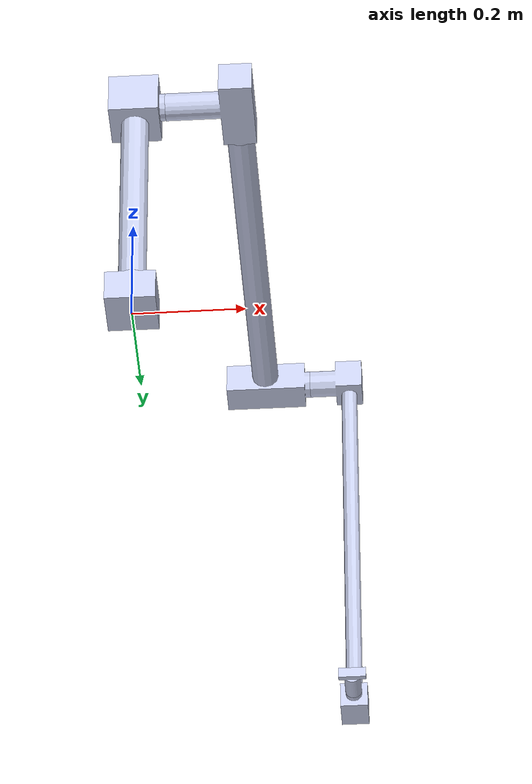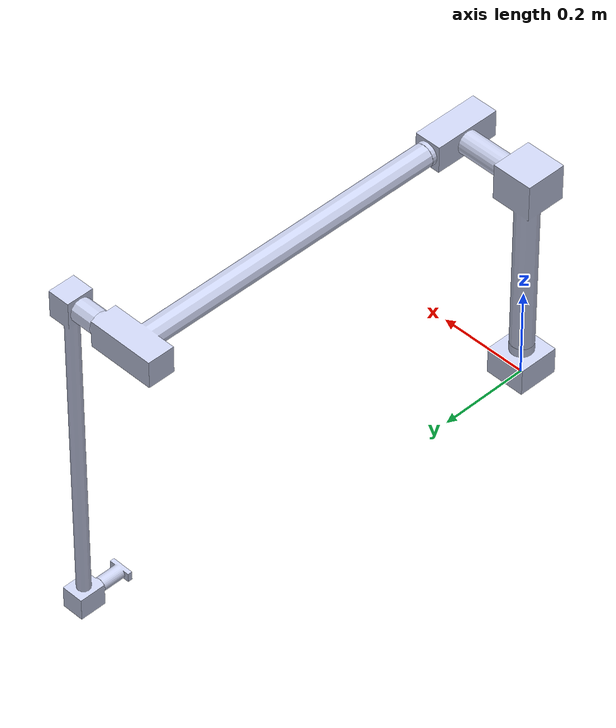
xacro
<?xml version="1.0" encoding="utf-8"?>
<robot xmlns:xacro="http://www.ros.org/wiki/xacro" name="arm">
  <link
    name="base_link">
    <inertial>
      <origin
        xyz="-3.7491E-18 -2.2788E-19 0.03299"
        rpy="0 0 0" />
      <mass
        value="0.52527" />
      <inertia
        ixx="0.00053943"
        ixy="8.6574E-20"
        ixz="7.3971E-21"
        iyy="0.00053943"
        iyz="1.378E-21"
        izz="0.00066837" />
    </inertial>
    <visual>
      <origin
        xyz="0 0 0"
        rpy="0 0 0" />
      <geometry>
        <mesh
          filename="package://armv1/meshes/base_link.STL" />
      </geometry>
      <material
        name="">
        <color
          rgba="0.79216 0.81961 0.93333 1" />
      </material>
    </visual>
    <collision>
      <origin
        xyz="0 0 0"
        rpy="0 0 0" />
      <geometry>
        <mesh
          filename="package://armv1/meshes/base_link.STL" />
      </geometry>
    </collision>
  </link>
  <link
    name="link_1">
    <inertial>
      <origin
        xyz="0.00071426 -3.2376E-18 -0.15314"
        rpy="0 0 0" />
      <mass
        value="1.3745" />
      <inertia
        ixx="0.025151"
        ixy="3.4326E-20"
        ixz="-0.00011107"
        iyy="0.025197"
        iyz="-5.097E-19"
        izz="0.0011473" />
    </inertial>
    <visual>
      <origin
        xyz="0 0 0"
        rpy="0 0 0" />
      <geometry>
        <mesh
          filename="package://armv1/meshes/link_1.STL" />
      </geometry>
      <material
        name="">
        <color
          rgba="0.79216 0.81961 0.93333 1" />
      </material>
    </visual>
    <collision>
      <origin
        xyz="0 0 0"
        rpy="0 0 0" />
      <geometry>
        <mesh
          filename="package://armv1/meshes/link_1.STL" />
      </geometry>
    </collision>
  </link>
  <joint
    name="joint_1"
    type="revolute">
    <origin
      xyz="0 0 0.52"
      rpy="0 0 0" />
    <parent
      link="base_link" />
    <child
      link="link_1" />
    <axis
      xyz="0 0 1" />
    <limit
      lower="-3.142"
      upper="3.142"
      effort="200"
      velocity="3" />
  </joint>
  <link
    name="link_2">
    <inertial>
      <origin
        xyz="-0.10922 0.0020778 0"
        rpy="0 0 0" />
      <mass
        value="0.75598" />
      <inertia
        ixx="0.0013615"
        ixy="3.2638E-05"
        ixz="-4.6781E-20"
        iyy="0.0014547"
        iyz="1.079E-20"
        izz="0.0024247" />
    </inertial>
    <visual>
      <origin
        xyz="0 0 0"
        rpy="0 0 0" />
      <geometry>
        <mesh
          filename="package://armv1/meshes/link_2.STL" />
      </geometry>
      <material
        name="">
        <color
          rgba="0.79216 0.81961 0.93333 1" />
      </material>
    </visual>
    <collision>
      <origin
        xyz="0 0 0"
        rpy="0 0 0" />
      <geometry>
        <mesh
          filename="package://armv1/meshes/link_2.STL" />
      </geometry>
    </collision>
  </link>
  <joint
    name="joint_2"
    type="revolute">
    <origin
      xyz="0.055 0 -0.04"
      rpy="3.1416 0 3.1416" />
    <parent
      link="link_1" />
    <child
      link="link_2" />
    <axis
      xyz="-1 0 0" />
    <limit
      lower="-3.142"
      upper="3.142"
      effort="200"
      velocity="3" />
  </joint>
  <link
    name="link_3">
    <inertial>
      <origin
        xyz="0.00081217 0.45995 0"
        rpy="0 0 0" />
      <mass
        value="1.9341" />
      <inertia
        ixx="0.1141"
        ixy="-0.00042419"
        ixz="-2.3816E-19"
        iyy="0.0017316"
        iyz="2.3442E-18"
        izz="0.11507" />
    </inertial>
    <visual>
      <origin
        xyz="0 0 0"
        rpy="0 0 0" />
      <geometry>
        <mesh
          filename="package://armv1/meshes/link_3.STL" />
      </geometry>
      <material
        name="">
        <color
          rgba="0.79216 0.81961 0.93333 1" />
      </material>
    </visual>
    <collision>
      <origin
        xyz="0 0 0"
        rpy="0 0 0" />
      <geometry>
        <mesh
          filename="package://armv1/meshes/link_3.STL" />
      </geometry>
    </collision>
  </link>
  <joint
    name="joint_3"
    type="revolute">
    <origin
      xyz="-0.13 0.085 0"
      rpy="3.1416 0 3.1416" />
    <parent
      link="link_2" />
    <child
      link="link_3" />
    <axis
      xyz="0 -1 0" />
    <limit
      lower="-3.142"
      upper="3.14"
      effort="200"
      velocity="3" />
  </joint>
  <link
    name="link_4">
    <inertial>
      <origin
        xyz="0.069722 -0.00026601 -0.32967"
        rpy="0 0 0" />
      <mass
        value="0.93004" />
      <inertia
        ixx="0.080357"
        ixy="1.3058E-06"
        ixz="0.0016183"
        iyy="0.080543"
        iyz="-0.00010523"
        izz="0.00048779" />
    </inertial>
    <visual>
      <origin
        xyz="0 0 0"
        rpy="0 0 0" />
      <geometry>
        <mesh
          filename="package://armv1/meshes/link_4.STL" />
      </geometry>
      <material
        name="">
        <color
          rgba="0.79216 0.81961 0.93333 1" />
      </material>
    </visual>
    <collision>
      <origin
        xyz="0 0 0"
        rpy="0 0 0" />
      <geometry>
        <mesh
          filename="package://armv1/meshes/link_4.STL" />
      </geometry>
    </collision>
  </link>
  <joint
    name="joint_4"
    type="revolute">
    <origin
      xyz="0.085 0.73 0"
      rpy="0 0 0" />
    <parent
      link="link_3" />
    <child
      link="link_4" />
    <axis
      xyz="1 0 0" />
    <limit
      lower="-3.142"
      upper="3.142"
      effort="150"
      velocity="3" />
  </joint>
  <link
    name="link_5">
    <inertial>
      <origin
        xyz="5.5511E-17 -0.031616 0"
        rpy="0 0 0" />
      <mass
        value="0.045343" />
      <inertia
        ixx="1.6783E-05"
        ixy="7.0687E-21"
        ixz="-1.3861E-22"
        iyy="6.3927E-06"
        iyz="-5.0175E-22"
        izz="1.8533E-05" />
    </inertial>
    <visual>
      <origin
        xyz="0 0 0"
        rpy="0 0 0" />
      <geometry>
        <mesh
          filename="package://armv1/meshes/link_5.STL" />
      </geometry>
      <material
        name="">
        <color
          rgba="0.79216 0.81961 0.93333 1" />
      </material>
    </visual>
    <collision>
      <origin
        xyz="0 0 0"
        rpy="0 0 0" />
      <geometry>
        <mesh
          filename="package://armv1/meshes/link_5.STL" />
      </geometry>
    </collision>
  </link>
  <joint
    name="joint_5"
    type="revolute">
    <origin
      xyz="0.075 -0.04 -0.755"
      rpy="0 0 0" />
    <parent
      link="link_4" />
    <child
      link="link_5" />
    <axis
      xyz="0 -1 0" />
    <limit
      lower="-3.142"
      upper="3.14"
      effort="100"
      velocity="3" />
  </joint>

</robot>
